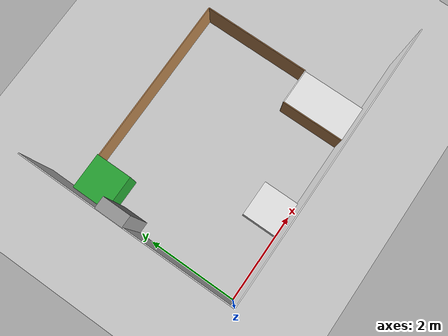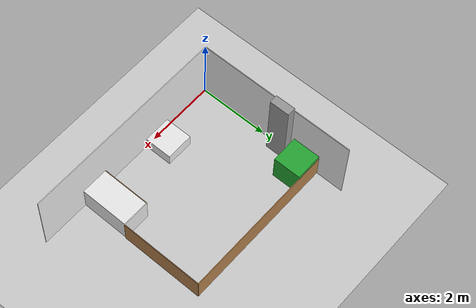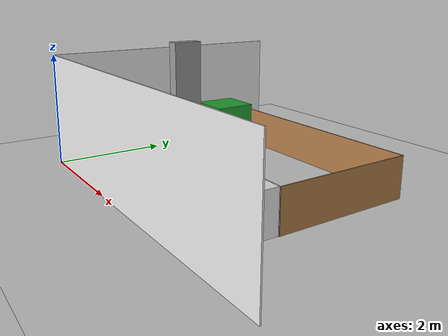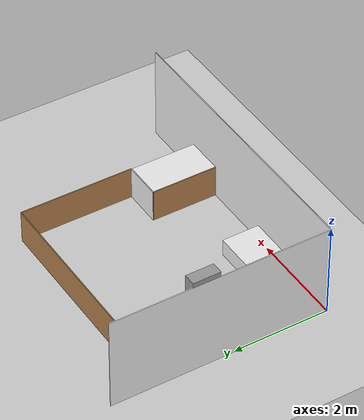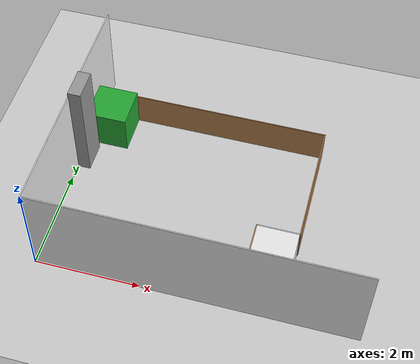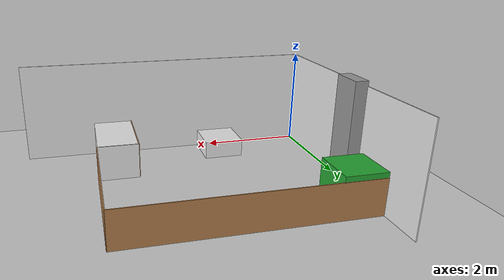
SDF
<sdf version='1.5'>
  <world name='arena'>
    <gui>
      <camera name='view from aboth'>
        <pose>6.6 5.8 3.5 0.0 0.4 3.92</pose>
      </camera>
    </gui>
    <light name='sun' type='directional'>
      <cast_shadows>1</cast_shadows>
      <pose>0 0 10 0 -0 0</pose>
      <diffuse>0.8 0.8 0.8 1</diffuse>
      <specular>0.2 0.2 0.2 1</specular>
      <attenuation>
        <range>1000</range>
        <constant>0.9</constant>
        <linear>0.01</linear>
        <quadratic>0.001</quadratic>
      </attenuation>
      <direction>-0.5 0.1 -0.9</direction>
    </light>
    <model name='ground_plane'>
      <static>1</static>
      <link name='link'>
        <collision name='collision'>
          <geometry>
            <plane>
              <normal>0 0 1</normal>
              <size>100 100</size>
            </plane>
          </geometry>
          <surface>
            <friction>
              <ode>
                <mu>100</mu>
                <mu2>50</mu2>
              </ode>
            </friction>
            <contact>
              <ode/>
            </contact>
            <bounce/>
          </surface>
          <max_contacts>10</max_contacts>
        </collision>
        <visual name='visual'>
          <cast_shadows>0</cast_shadows>
          <geometry>
            <plane>
              <normal>0 0 1</normal>
              <size>100 100</size>
            </plane>
          </geometry>
          <material>
            <script>
              <uri>file://media/materials/scripts/gazebo.material</uri>
              <name>Gazebo/Grey</name>
            </script>
          </material>
        </visual>
        <self_collide>0</self_collide>
        <kinematic>0</kinematic>
        <gravity>1</gravity>
      </link>
    </model>
    <physics name='default_physics' default='0' type='ode'>
      <max_step_size>0.001</max_step_size>
      <real_time_factor>1</real_time_factor>
      <real_time_update_rate>1000</real_time_update_rate>
      <gravity>0 0 -9.81</gravity>
      <magnetic_field>5.5645e-06 2.28758e-05 -4.23884e-05</magnetic_field>
    </physics>
    <scene>
      <ambient>0.4 0.4 0.4 1</ambient>
      <background>0.7 0.7 0.7 1</background>
      <shadows>1</shadows>
    </scene>
    <model name='Stall'>
      <static>1</static>
      <pose>0.0 0.0 0.0 0 0 0</pose>
      <link name='Wall_1'>
        <pose>3.0 0 1.0 0 0 0</pose>
		<collision name='Wall_1_Collision'>
          <geometry>
            <box>
              <size>6.0 0.02 2.0</size>
            </box>
          </geometry>
          <max_contacts>10</max_contacts>
          <surface>
            <contact>
              <ode/>
            </contact>
            <bounce/>
            <friction>
              <ode/>
            </friction>
          </surface>
        </collision>
        <visual name='Wall_1_Visual'>
          <geometry>
            <box>
              <size>6.0 0.02 2.0</size>
            </box>
          </geometry>
          <material>
            <script>
              <uri>file://media/materials/scripts/gazebo.material</uri>
              <name>Gazebo/White</name>
            </script>
          </material>
        </visual>
        <self_collide>0</self_collide>
        <kinematic>0</kinematic>
        <gravity>1</gravity>
      </link>
    <link name='Wall_2'>
		<pose>3.8 0.7 0.35 0 0 0</pose>
		<collision name='Wall_2_Collision'>
          <pose>0 0 0 0 0 0</pose>
          <geometry>
            <box>
              <size>0.02 1.4 0.7</size>
            </box>
          </geometry>
          <max_contacts>10</max_contacts>
          <surface>
            <contact>
              <ode/>
            </contact>
            <bounce/>
            <friction>
              <ode/>
            </friction>
          </surface>
        </collision>
        <visual name='Wall_2_Visual'>
          <pose>0 0 0 0 0 0</pose>
          <geometry>
            <box>
              <size>0.02 1.4 0.7</size>
            </box>
          </geometry>
          <material>
            <script>
              <uri>file://media/materials/scripts/gazebo.material</uri>
              <name>Gazebo/Wood</name>
            </script>
            <ambient>0.996078 0.47451 0.0196078 1</ambient>
          </material>
        </visual>
        <self_collide>0</self_collide>
        <kinematic>0</kinematic>
        <gravity>1</gravity>
      </link>
      <link name='Wall_3'>
		<pose>4.2 1.4 0.35 0 0 0</pose>
		<collision name='Wall_3_Collision'>
          <pose>0 0 0 0 0 0</pose>
          <geometry>
            <box>
              <size>0.8 0.02 0.7</size>
            </box>
          </geometry>
          <max_contacts>10</max_contacts>
          <surface>
            <contact>
              <ode/>
            </contact>
            <bounce/>
            <friction>
              <ode/>
            </friction>
          </surface>
        </collision>
        <visual name='Wall_3_Visual'>
          <pose>0 0 0 0 0 0</pose>
          <geometry>
            <box>
              <size>0.8 0.02 0.7</size>
            </box>
          </geometry>
          <material>
            <script>
              <name>Gazebo/White</name>
              <uri>file://media/materials/scripts/gazebo.material</uri>
            </script>
            <ambient>0.996078 0.47451 0.0196078 1</ambient>
          </material>
        </visual>
        <self_collide>0</self_collide>
        <kinematic>0</kinematic>
        <gravity>1</gravity>
      </link>
      <link name='Wall_4'>
		<pose>4.6 2.6 0.35 0 0 0</pose>
		<collision name='Wall_4_Collision'>
          <pose>0 0 0 0 0 0</pose>
          <geometry>
            <box>
              <size>0.02 2.4 0.7</size>
            </box>
          </geometry>
          <max_contacts>10</max_contacts>
          <surface>
            <contact>
              <ode/>
            </contact>
            <bounce/>
            <friction>
              <ode/>
            </friction>
          </surface>
        </collision>
        <visual name='Wall_4_Visual'>
          <pose>0 0 0 0 0 0</pose>
          <geometry>
            <box>
              <size>0.02 2.4 0.7</size>
            </box>
          </geometry>
          <material>
            <script>
              <uri>file://media/materials/scripts/gazebo.material</uri>
              <name>Gazebo/Wood</name>
            </script>
            <ambient>0.996078 0.47451 0.0196078 1</ambient>
          </material>
        </visual>
        <self_collide>0</self_collide>
        <kinematic>0</kinematic>
        <gravity>1</gravity>
      </link>
      <link name='Wall_5'>
		<pose>2.3 3.8 0.35 0 0 0</pose>
		<collision name='Wall_5_Collision'>
          <pose>0 0 0 0 0 0</pose>
          <geometry>
            <box>
              <size>4.6 0.02 0.7</size>
            </box>
          </geometry>
          <max_contacts>10</max_contacts>
          <surface>
            <contact>
              <ode/>
            </contact>
            <bounce/>
            <friction>
              <ode/>
            </friction>
          </surface>
        </collision>
        <visual name='Wall_5_Visual'>
          <pose>0 0 0 0 0 0</pose>
          <geometry>
            <box>
              <size>4.6 0.02 0.7</size>
            </box>
          </geometry>
          <material>
            <script>
              <uri>file://media/materials/scripts/gazebo.material</uri>
              <name>Gazebo/Wood</name>
            </script>
            <ambient>0.996078 0.47451 0.0196078 1</ambient>
          </material>
        </visual>
        <self_collide>0</self_collide>
        <kinematic>0</kinematic>
        <gravity>1</gravity>
      </link>
      <link name='Wall_6'>
		<pose>0 2.3 1.0 0.0 0 0</pose>
		<collision name='Wall_6_Collision'>
          <pose>0 0 0 0 0 0</pose>
          <geometry>
            <box>
              <size>0.02 4.6 2.0</size>
            </box>
          </geometry>
          <max_contacts>10</max_contacts>
          <surface>
            <contact>
              <ode/>
            </contact>
            <bounce/>
            <friction>
              <ode/>
            </friction>
          </surface>
        </collision>
        <visual name='Wall_6_Visual'>
          <pose>0 0 0 0 0 0</pose>
          <geometry>
            <box>
              <size>0.02 4.6 2.0</size>
            </box>
          </geometry>
          <material>
            <script>
              <name>Gazebo/White</name>
              <uri>file://media/materials/scripts/gazebo.material</uri>
            </script>
          </material>
        </visual>
        <self_collide>0</self_collide>
        <kinematic>0</kinematic>
        <gravity>1</gravity>
      </link>
    </model>
    <model name='table_1'>
      <pose>1.9 0.4 0 0 0 0</pose>
      <link name='link'>
        <inertial>
          <mass>1</mass>
          <inertia>
            <ixx>0.166667</ixx>
            <ixy>0</ixy>
            <ixz>0</ixz>
            <iyy>0.166667</iyy>
            <iyz>0</iyz>
            <izz>0.166667</izz>
          </inertia>
        </inertial>
        <collision name='table_1_collision'>
          <geometry>
            <box>
              <size>0.8 0.8 0.7</size>
            </box>
          </geometry>
          <max_contacts>10</max_contacts>
          <surface>
            <contact>
              <ode/>
            </contact>
            <bounce/>
            <friction>
              <ode/>
            </friction>
          </surface>
        </collision>
        <visual name='table_1_visual'>
          <geometry>
            <box>
              <size>0.8 0.8 0.7</size>
            </box>
          </geometry>
          <material>
            <script>
              <name>Gazebo/White</name>
              <uri>file://media/materials/scripts/gazebo.material</uri>
            </script>
          </material>
        </visual>
        <self_collide>0</self_collide>
        <kinematic>0</kinematic>
        <gravity>1</gravity>
      </link>
    </model>
    <model name='table_2'>
      <pose>4.2 0.7 0.35 0 0 0</pose>
      <link name='link'>
        <inertial>
          <mass>1</mass>
          <inertia>
            <ixx>0.166667</ixx>
            <ixy>0</ixy>
            <ixz>0</ixz>
            <iyy>0.166667</iyy>
            <iyz>0</iyz>
            <izz>0.166667</izz>
          </inertia>
        </inertial>
        <collision name='table_2_collision'>
          <geometry>
            <box>
              <size>0.78 1.38 0.7</size>
            </box>
          </geometry>
          <max_contacts>10</max_contacts>
          <surface>
            <contact>
              <ode/>
            </contact>
            <bounce/>
            <friction>
              <ode/>
            </friction>
          </surface>
        </collision>
        <visual name='table_2_visual'>
          <geometry>
            <box>
              <size>0.78 1.38 0.7</size>
            </box>
          </geometry>
          <material>
            <script>
              <name>Gazebo/White</name>
              <uri>file://media/materials/scripts/gazebo.material</uri>
            </script>
          </material>
        </visual>
        <self_collide>0</self_collide>
        <kinematic>0</kinematic>
        <gravity>1</gravity>
      </link>
    </model>
    <model name='electric_cabinet'>
      <pose>0.125 2.61 1.05 0 0 0</pose>
      <link name='link'>
        <inertial>
          <mass>1</mass>
          <inertia>
            <ixx>0.166667</ixx>
            <ixy>0</ixy>
            <ixz>0</ixz>
            <iyy>0.166667</iyy>
            <iyz>0</iyz>
            <izz>0.166667</izz>
          </inertia>
        </inertial>
        <collision name='electric_cabinet_collision'>
          <geometry>
            <box>
              <size>0.25 0.58 2.10</size>
            </box>
          </geometry>
          <max_contacts>10</max_contacts>
          <surface>
            <contact>
              <ode/>
            </contact>
            <bounce/>
            <friction>
              <ode/>
            </friction>
          </surface>
        </collision>
        <visual name='electric_cabinet_visual'>
          <geometry>
            <box>
              <size>0.25 0.58 2.10</size>
            </box>
          </geometry>
          <material>
            <script>
              <name>Gazebo/Grey</name>
              <uri>file://media/materials/scripts/gazebo.material</uri>
            </script>
          </material>
        </visual>
        <self_collide>0</self_collide>
        <kinematic>0</kinematic>
        <gravity>1</gravity>
      </link>
    </model>
    <model name='tool_cabinet'>
      <pose>0.4 3.4 0.4 0 0 0</pose>
      <link name='link'>
        <inertial>
          <mass>1</mass>
          <inertia>
            <ixx>0.166667</ixx>
            <ixy>0</ixy>
            <ixz>0</ixz>
            <iyy>0.166667</iyy>
            <iyz>0</iyz>
            <izz>0.166667</izz>
          </inertia>
        </inertial>
        <collision name='tool_cabinet_collision'>
          <geometry>
            <box>
              <size>0.8 0.8 0.8</size>
            </box>
          </geometry>
          <max_contacts>10</max_contacts>
          <surface>
            <contact>
              <ode/>
            </contact>
            <bounce/>
            <friction>
              <ode/>
            </friction>
          </surface>
        </collision>
        <visual name='tool_cabinet_visual'>
          <geometry>
            <box>
              <size>0.8 0.8 0.8</size>
            </box>
          </geometry>
          <material>
            <script>
              <name>Gazebo/Green</name>
              <uri>file://media/materials/scripts/gazebo.material</uri>
            </script>
          </material>
        </visual>
        <self_collide>0</self_collide>
        <kinematic>0</kinematic>
        <gravity>1</gravity>
      </link>
    </model>
  </world>
</sdf>
